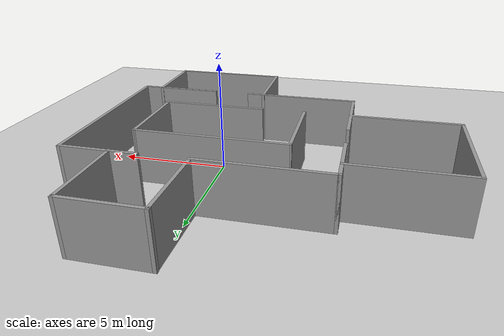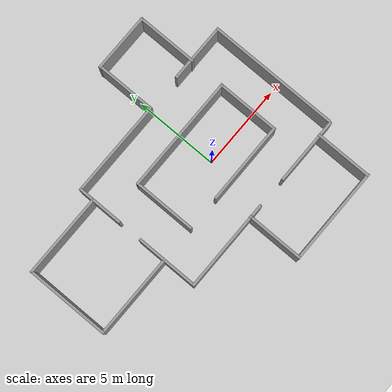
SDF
<sdf version="1.6">
 <world name="default">
  <light name="sun" type="directional">
   <pose>0 0 10 0 -0 0</pose>
   <diffuse>0.8 0.8 0.8 1</diffuse>
   <specular>0.2 0.2 0.2 1</specular>
   <attenuation>
    <range>1000</range>
    <constant>0.9</constant>
    <linear>0.01</linear>
    <quadratic>0.001</quadratic>
   </attenuation>
   <direction>-0.5 0.1 -0.9</direction>
  </light>
  <model name="ground_plane">
   <static>1</static>
   <link name="link">
    <collision name="collision">
     <geometry><plane><normal>0 0 1</normal><size>100 100</size></plane></geometry>
     <surface>
      <contact><collide_bitmask>65535</collide_bitmask></contact>
      <friction><ode><mu>100</mu><mu2>50</mu2></ode></friction>
     </surface>
    </collision>
    <visual name="visual">
     <cast_shadows>0</cast_shadows>
     <geometry><plane><normal>0 0 1</normal><size>100 100</size></plane></geometry>
     <material>
      <script><uri>file://media/materials/scripts/gazebo.material</uri><name>Gazebo/Grey</name></script>
     </material>
    </visual>
   </link>
  </model>
  <gravity>0 0 -9.8</gravity>
  <magnetic_field>6e-06 2.3e-05 -4.2e-05</magnetic_field>
  <atmosphere type="adiabatic"/>
  <physics name="default_physics" default="0" type="ode">
   <max_step_size>0.001</max_step_size>
   <real_time_factor>1</real_time_factor>
   <real_time_update_rate>1000</real_time_update_rate>
  </physics>
  <scene><ambient>0.4 0.4 0.4 1</ambient><background>0.7 0.7 0.7 1</background><shadows>1</shadows></scene>
  <spherical_coordinates>
   <surface_model>EARTH_WGS84</surface_model>
   <latitude_deg>0</latitude_deg>
   <longitude_deg>0</longitude_deg>
   <elevation>0</elevation>
   <heading_deg>0</heading_deg>
  </spherical_coordinates>
  <model name="smalloffice">
   <pose>-2.58081 0.370324 0 0 -0 0</pose>
   <link name="Wall_10">
    <collision name="Wall_10_Collision">
     <geometry><box><size>5.5 0.15 2.5</size></box></geometry>
     <pose>0 0 1.25 0 -0 0</pose>
    </collision>
    <visual name="Wall_10_Visual">
     <pose>0 0 1.25 0 -0 0</pose>
     <geometry><box><size>5.5 0.15 2.5</size></box></geometry>
     <material>
      <script><uri>file://media/materials/scripts/gazebo.material</uri><name>Gazebo/Grey</name></script>
      <ambient>1 1 1 1</ambient>
     </material>
     <meta><layer>0</layer></meta>
    </visual>
    <pose>-0.439667 -3.94692 0 0 -0 0</pose>
   </link>
   <link name="Wall_12">
    <collision name="Wall_12_Collision">
     <geometry><box><size>4 0.15 2.5</size></box></geometry>
     <pose>0 0 1.25 0 -0 0</pose>
    </collision>
    <visual name="Wall_12_Visual">
     <pose>0 0 1.25 0 -0 0</pose>
     <geometry><box><size>4 0.15 2.5</size></box></geometry>
     <material>
      <script><uri>file://media/materials/scripts/gazebo.material</uri><name>Gazebo/Grey</name></script>
      <ambient>1 1 1 1</ambient>
     </material>
     <meta><layer>0</layer></meta>
    </visual>
    <pose>6.03449 -3.94692 0 0 -0 0</pose>
   </link>
   <link name="Wall_15">
    <collision name="Wall_15_Collision">
     <geometry><box><size>3.42586 0.15 2.5</size></box></geometry>
     <pose>0 0 1.25 0 -0 0</pose>
    </collision>
    <visual name="Wall_15_Visual">
     <pose>0 0 1.25 0 -0 0</pose>
     <geometry><box><size>3.42586 0.15 2.5</size></box></geometry>
     <material>
      <script><uri>file://media/materials/scripts/gazebo.material</uri><name>Gazebo/Grey</name></script>
      <ambient>1 1 1 1</ambient>
     </material>
     <meta><layer>0</layer></meta>
    </visual>
    <pose>1.49358 -5.56959 0 0 -0 -1.5708</pose>
   </link>
   <link name="Wall_16">
    <collision name="Wall_16_Collision">
     <geometry><box><size>5.75 0.15 2.5</size></box></geometry>
     <pose>0 0 1.25 0 -0 0</pose>
    </collision>
    <visual name="Wall_16_Visual">
     <pose>0 0 1.25 0 -0 0</pose>
     <geometry><box><size>5.75 0.15 2.5</size></box></geometry>
     <material>
      <script><uri>file://media/materials/scripts/gazebo.material</uri><name>Gazebo/Grey</name></script>
      <ambient>1 1 1 1</ambient>
     </material>
     <meta><layer>0</layer></meta>
    </visual>
    <pose>4.30681 -7.20747 0 0 -0 0</pose>
   </link>
   <link name="Wall_17">
    <collision name="Wall_17_Collision">
     <geometry><box><size>3.42586 0.15 2.5</size></box></geometry>
     <pose>0 0 1.25 0 -0 0</pose>
    </collision>
    <visual name="Wall_17_Visual">
     <pose>0 0 1.25 0 -0 0</pose>
     <geometry><box><size>3.42586 0.15 2.5</size></box></geometry>
     <material>
      <script><uri>file://media/materials/scripts/gazebo.material</uri><name>Gazebo/Grey</name></script>
      <ambient>1 1 1 1</ambient>
     </material>
     <meta><layer>0</layer></meta>
    </visual>
    <pose>7.09359 -5.56959 0 0 -0 1.5708</pose>
   </link>
   <link name="Wall_20">
    <collision name="Wall_20_Collision">
     <geometry><box><size>3.75 0.15 2.5</size></box></geometry>
     <pose>0 0 1.25 0 -0 0</pose>
    </collision>
    <visual name="Wall_20_Visual">
     <pose>0 0 1.25 0 -0 0</pose>
     <geometry><box><size>3.75 0.15 2.5</size></box></geometry>
     <material>
      <script><uri>file://media/materials/scripts/gazebo.material</uri><name>Gazebo/Grey</name></script>
      <ambient>1 1 1 1</ambient>
     </material>
     <meta><layer>0</layer></meta>
    </visual>
    <pose>-3.11467 -2.14692 0 0 -0 1.5708</pose>
   </link>
   <link name="Wall_26">
    <collision name="Wall_26_Collision">
     <geometry><box><size>2.75 0.15 2.5</size></box></geometry>
     <pose>0 0 1.25 0 -0 0</pose>
    </collision>
    <visual name="Wall_26_Visual">
     <pose>0 0 1.25 0 -0 0</pose>
     <geometry><box><size>2.75 0.15 2.5</size></box></geometry>
     <material>
      <script><uri>file://media/materials/scripts/gazebo.material</uri><name>Gazebo/Grey</name></script>
      <ambient>1 1 1 1</ambient>
     </material>
     <meta><layer>0</layer></meta>
    </visual>
    <pose>-3.12073 2.44539 0 0 -0 1.5708</pose>
   </link>
   <link name="Wall_34">
    <collision name="Wall_34_Collision">
     <geometry><box><size>5.75 0.15 2.5</size></box></geometry>
     <pose>0 0 1.25 0 -0 0</pose>
    </collision>
    <visual name="Wall_34_Visual">
     <pose>0 0 1.25 0 -0 0</pose>
     <geometry><box><size>5.75 0.15 2.5</size></box></geometry>
     <material>
      <script><uri>file://media/materials/scripts/gazebo.material</uri><name>Gazebo/Grey</name></script>
      <ambient>1 1 1 1</ambient>
     </material>
     <meta><layer>0</layer></meta>
    </visual>
    <pose>-0.320728 3.74539 0 0 -0 0</pose>
   </link>
   <link name="Wall_35">
    <collision name="Wall_35_Collision">
     <geometry><box><size>3.61213 0.15 2.5</size></box></geometry>
     <pose>0 0 1.25 0 -0 0</pose>
    </collision>
    <visual name="Wall_35_Visual">
     <pose>0 0 1.25 0 -0 0</pose>
     <geometry><box><size>3.61213 0.15 2.5</size></box></geometry>
     <material>
      <script><uri>file://media/materials/scripts/gazebo.material</uri><name>Gazebo/Grey</name></script>
      <ambient>1 1 1 1</ambient>
     </material>
     <meta><layer>0</layer></meta>
    </visual>
    <pose>2.47927 5.47646 0 0 -0 1.5708</pose>
   </link>
   <link name="Wall_36">
    <collision name="Wall_36_Collision">
     <geometry><box><size>3.5 0.15 2.5</size></box></geometry>
     <pose>0 0 1.25 0 -0 0</pose>
    </collision>
    <visual name="Wall_36_Visual">
     <pose>0 0 1.25 0 -0 0</pose>
     <geometry><box><size>3.5 0.15 2.5</size></box></geometry>
     <material>
      <script><uri>file://media/materials/scripts/gazebo.material</uri><name>Gazebo/Grey</name></script>
      <ambient>1 1 1 1</ambient>
     </material>
     <meta><layer>0</layer></meta>
    </visual>
    <pose>4.13906 7.20752 0 0 -0 0</pose>
   </link>
   <link name="Wall_37">
    <collision name="Wall_37_Collision">
     <geometry><box><size>3.61213 0.15 2.5</size></box></geometry>
     <pose>0 0 1.25 0 -0 0</pose>
    </collision>
    <visual name="Wall_37_Visual">
     <pose>0 0 1.25 0 -0 0</pose>
     <geometry><box><size>3.61213 0.15 2.5</size></box></geometry>
     <material>
      <script><uri>file://media/materials/scripts/gazebo.material</uri><name>Gazebo/Grey</name></script>
      <ambient>1 1 1 1</ambient>
     </material>
     <meta><layer>0</layer></meta>
    </visual>
    <pose>5.82927 5.47646 0 0 -0 -1.5708</pose>
   </link>
   <link name="Wall_39">
    <collision name="Wall_39_Collision">
     <geometry><box><size>3.5 0.15 2.5</size></box></geometry>
     <pose>0 0 1.25 0 -0 0</pose>
    </collision>
    <visual name="Wall_39_Visual">
     <pose>0 0 1.25 0 -0 0</pose>
     <geometry><box><size>3.5 0.15 2.5</size></box></geometry>
     <material>
      <script><uri>file://media/materials/scripts/gazebo.material</uri><name>Gazebo/Grey</name></script>
      <ambient>1 1 1 1</ambient>
     </material>
     <meta><layer>0</layer></meta>
    </visual>
    <pose>6.32137 3.78295 0 0 -0 0</pose>
   </link>
   <link name="Wall_43">
    <collision name="Wall_43_Collision">
     <geometry><box><size>7.75 0.15 2.5</size></box></geometry>
     <pose>0 0 1.25 0 -0 0</pose>
    </collision>
    <visual name="Wall_43_Visual">
     <pose>0 0 1.25 0 -0 0</pose>
     <geometry><box><size>7.75 0.15 2.5</size></box></geometry>
     <material>
      <script><uri>file://media/materials/scripts/gazebo.material</uri><name>Gazebo/Grey</name></script>
      <ambient>1 1 1 1</ambient>
     </material>
     <meta><layer>0</layer></meta>
    </visual>
    <pose>7.99637 -0.017048 0 0 -0 -1.5708</pose>
   </link>
   <link name="Wall_45">
    <collision name="Wall_45_Collision">
     <geometry><box><size>5 0.15 2.5</size></box></geometry>
     <pose>0 0 1.25 0 -0 0</pose>
    </collision>
    <visual name="Wall_45_Visual">
     <pose>0 0 1.25 0 -0 0</pose>
     <geometry><box><size>5 0.15 2.5</size></box></geometry>
     <material>
      <script><uri>file://media/materials/scripts/gazebo.material</uri><name>Gazebo/Grey</name></script>
      <ambient>1 1 1 1</ambient>
     </material>
     <meta><layer>0</layer></meta>
    </visual>
    <pose>-5.57137 2.89308 0 0 -0 3.14159</pose>
   </link>
   <link name="Wall_46">
    <collision name="Wall_46_Collision">
     <geometry><box><size>5 0.15 2.5</size></box></geometry>
     <pose>0 0 1.25 0 -0 0</pose>
    </collision>
    <visual name="Wall_46_Visual">
     <pose>0 0 1.25 0 -0 0</pose>
     <geometry><box><size>5 0.15 2.5</size></box></geometry>
     <material>
      <script><uri>file://media/materials/scripts/gazebo.material</uri><name>Gazebo/Grey</name></script>
      <ambient>1 1 1 1</ambient>
     </material>
     <meta><layer>0</layer></meta>
    </visual>
    <pose>-7.99637 0.468075 0 0 -0 -1.5708</pose>
   </link>
   <link name="Wall_47">
    <collision name="Wall_47_Collision">
     <geometry><box><size>5 0.15 2.5</size></box></geometry>
     <pose>0 0 1.25 0 -0 0</pose>
    </collision>
    <visual name="Wall_47_Visual">
     <pose>0 0 1.25 0 -0 0</pose>
     <geometry><box><size>5 0.15 2.5</size></box></geometry>
     <material>
      <script><uri>file://media/materials/scripts/gazebo.material</uri><name>Gazebo/Grey</name></script>
      <ambient>1 1 1 1</ambient>
     </material>
     <meta><layer>0</layer></meta>
    </visual>
    <pose>-5.57137 -1.95693 0 0 -0 0</pose>
   </link>
   <link name="Wall_49">
    <collision name="Wall_49_Collision">
     <geometry><box><size>6.94254 0.15 2.5</size></box></geometry>
     <pose>0 0 1.25 0 -0 0</pose>
    </collision>
    <visual name="Wall_49_Visual">
     <pose>0 0 1.25 0 -0 0</pose>
     <geometry><box><size>6.94254 0.15 2.5</size></box></geometry>
     <material>
      <script><uri>file://media/materials/scripts/gazebo.material</uri><name>Gazebo/Grey</name></script>
      <ambient>1 1 1 1</ambient>
     </material>
     <meta><layer>0</layer></meta>
    </visual>
    <pose>2.43212 1.68375 0 0 -0 0.001744</pose>
   </link>
   <link name="Wall_5">
    <collision name="Wall_5_Collision">
     <geometry><box><size>3.73251 0.15 2.5</size></box></geometry>
     <pose>0 0 1.25 0 -0 0</pose>
    </collision>
    <visual name="Wall_5_Visual">
     <pose>0 0 1.25 0 -0 0</pose>
     <geometry><box><size>3.73251 0.15 2.5</size></box></geometry>
     <material>
      <script><uri>file://media/materials/scripts/gazebo.material</uri><name>Gazebo/Grey</name></script>
      <ambient>1 1 1 1</ambient>
     </material>
     <meta><layer>0</layer></meta>
    </visual>
    <pose>5.82838 -0.101579 0 0 -0 1.5708</pose>
   </link>
   <link name="Wall_52">
    <collision name="Wall_52_Collision">
     <geometry><box><size>4.88713 0.15 2.5</size></box></geometry>
     <pose>0 0 1.25 0 -0 0</pose>
    </collision>
    <visual name="Wall_52_Visual">
     <pose>0 0 1.25 0 -0 0</pose>
     <geometry><box><size>4.88713 0.15 2.5</size></box></geometry>
     <material>
      <script><uri>file://media/materials/scripts/gazebo.material</uri><name>Gazebo/Grey</name></script>
      <ambient>1 1 1 1</ambient>
     </material>
     <meta><layer>0</layer></meta>
    </visual>
    <pose>3.45985 -1.9045 0 0 -0 0.004925</pose>
   </link>
   <link name="Wall_7">
    <collision name="Wall_7_Collision">
     <geometry><box><size>3.73815 0.15 2.5</size></box></geometry>
     <pose>0 0 1.25 0 -0 0</pose>
    </collision>
    <visual name="Wall_7_Visual">
     <pose>0 0 1.25 0 -0 0</pose>
     <geometry><box><size>3.73815 0.15 2.5</size></box></geometry>
     <material>
      <script><uri>file://media/materials/scripts/gazebo.material</uri><name>Gazebo/Grey</name></script>
      <ambient>1 1 1 1</ambient>
     </material>
     <meta><layer>0</layer></meta>
    </visual>
    <pose>-0.964144 -0.116249 0 0 -0 -1.5708</pose>
   </link>
   <static>1</static>
  </model>
 </world>
</sdf>
